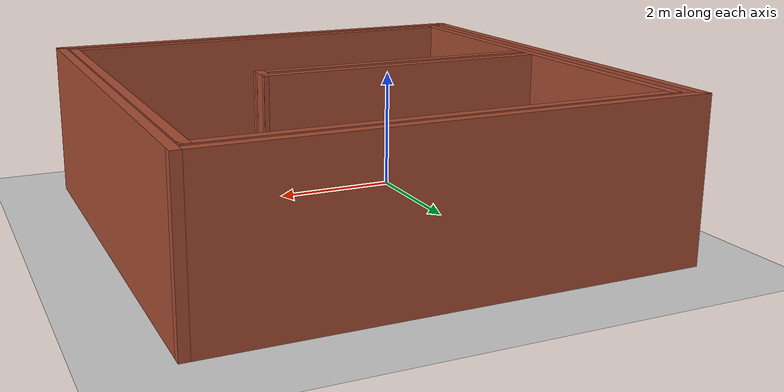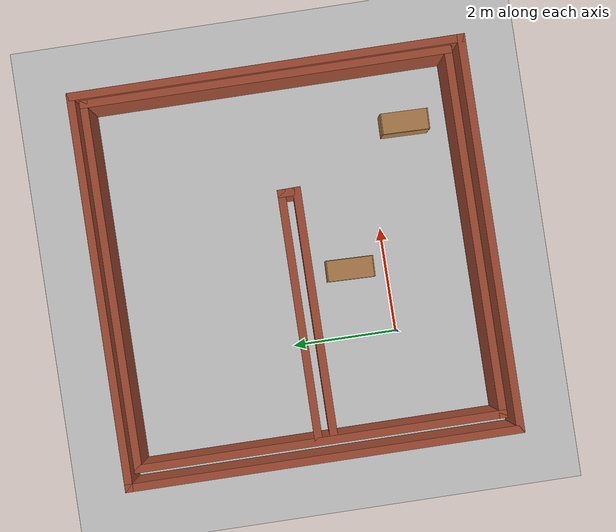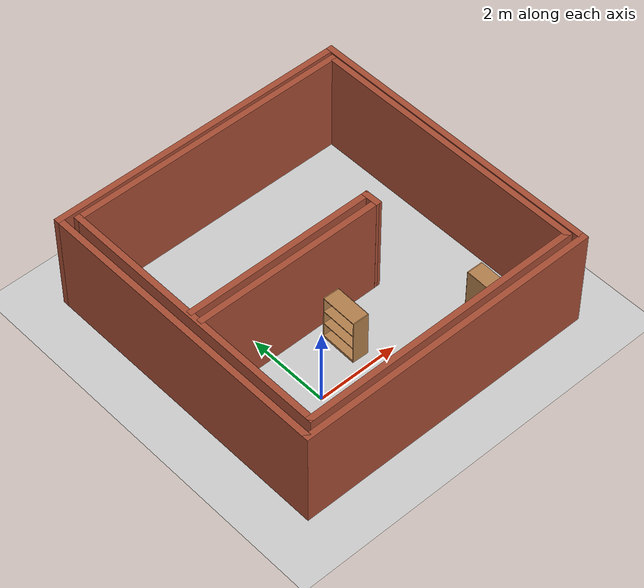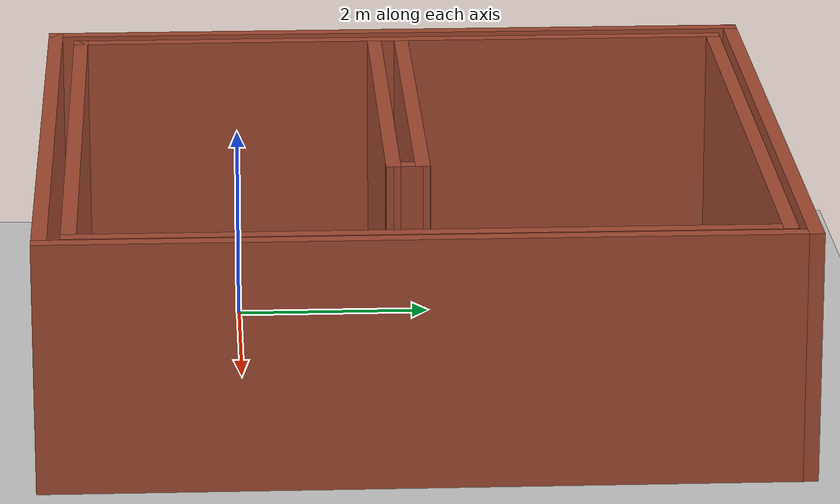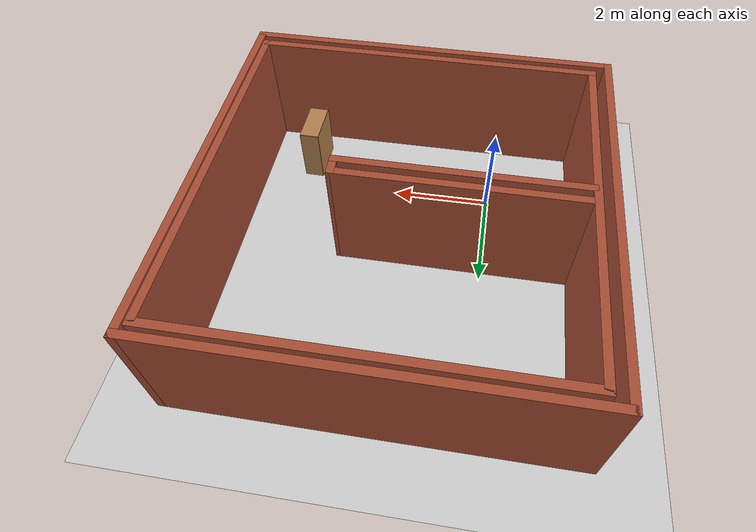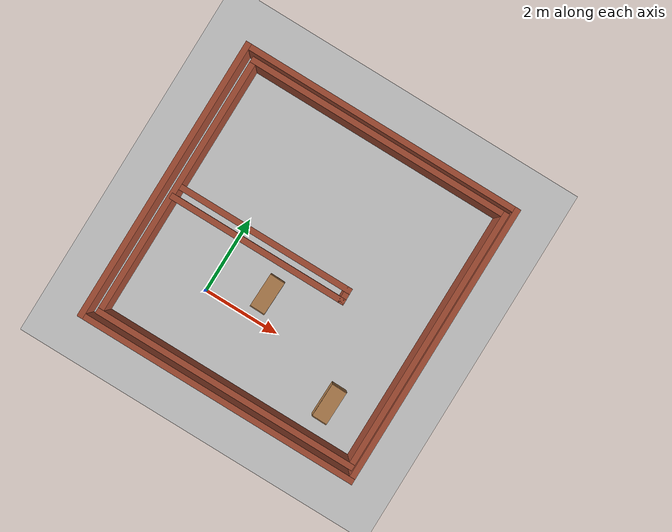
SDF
<sdf version="1.6">
 <world name="default">
  <model name="ground_plane">
   <static>1</static>
   <link name="link">
    <collision name="collision">
     <geometry><plane><normal>0 0 1</normal><size>100 100</size></plane></geometry>
     <surface><friction><ode><mu>100</mu><mu2>50</mu2></ode></friction></surface>
    </collision>
    <visual name="visual">
     <cast_shadows>0</cast_shadows>
     <geometry><plane><normal>0 0 1</normal><size>100 100</size></plane></geometry>
     <material>
      <script><uri>file://media/materials/scripts/gazebo.material</uri><name>Gazebo/Grey</name></script>
     </material>
    </visual>
   </link>
  </model>
  <model name="room_mini">
   <pose>1.55832 1.74079 0 0 -0 0</pose>
   <link name="Wall_0">
    <collision name="Wall_0_Collision">
     <geometry><box><size>7 0.15 2.5</size></box></geometry>
     <pose>0 0 1.25 0 -0 0</pose>
    </collision>
    <visual name="Wall_0_Visual">
     <pose>0 0 1.25 0 -0 0</pose>
     <geometry><box><size>7 0.15 2.5</size></box></geometry>
     <material>
      <script><uri>file://media/materials/scripts/gazebo.material</uri><name>Gazebo/Bricks</name></script>
      <ambient>1 1 1 1</ambient>
     </material>
     <meta><layer>0</layer></meta>
    </visual>
    <pose>0.076061 -3.39774 0 0 -0 0</pose>
   </link>
   <link name="Wall_13">
    <collision name="Wall_13_Collision">
     <geometry><box><size>4.75 0.15 2.5</size></box></geometry>
     <pose>0 0 1.25 0 -0 0</pose>
    </collision>
    <visual name="Wall_13_Visual">
     <pose>0 0 1.25 0 -0 0</pose>
     <geometry><box><size>4.75 0.15 2.5</size></box></geometry>
     <material>
      <script><uri>file://media/materials/scripts/gazebo.material</uri><name>Gazebo/Bricks</name></script>
      <ambient>1 1 1 1</ambient>
     </material>
     <meta><layer>0</layer></meta>
    </visual>
    <pose>-0.985198 -0.23 0 0 -0 0</pose>
   </link>
   <link name="Wall_16">
    <collision name="Wall_16_Collision">
     <geometry><box><size>0.441128 0.15 2.5</size></box></geometry>
     <pose>0 0 1.25 0 -0 0</pose>
    </collision>
    <visual name="Wall_16_Visual">
     <pose>0 0 1.25 0 -0 0</pose>
     <geometry><box><size>0.441128 0.15 2.5</size></box></geometry>
     <material>
      <script><uri>file://media/materials/scripts/gazebo.material</uri><name>Gazebo/Bricks</name></script>
      <ambient>1 1 1 1</ambient>
     </material>
     <meta><layer>0</layer></meta>
    </visual>
    <pose>1.31175 -0.084468 0 0 -0 -1.54982</pose>
   </link>
   <link name="Wall_2">
    <collision name="Wall_2_Collision">
     <geometry><box><size>7 0.15 2.5</size></box></geometry>
     <pose>0 0 1.25 0 -0 0</pose>
    </collision>
    <visual name="Wall_2_Visual">
     <pose>0 0 1.25 0 -0 0</pose>
     <geometry><box><size>7 0.15 2.5</size></box></geometry>
     <material>
      <script><uri>file://media/materials/scripts/gazebo.material</uri><name>Gazebo/Bricks</name></script>
      <ambient>1 1 1 1</ambient>
     </material>
     <meta><layer>0</layer></meta>
    </visual>
    <pose>3.50116 0.027424 0 0 -0 1.57077</pose>
   </link>
   <link name="Wall_20">
    <collision name="Wall_20_Collision">
     <geometry><box><size>7.5 0.15 2.5</size></box></geometry>
     <pose>0 0 1.25 0 -0 0</pose>
    </collision>
    <visual name="Wall_20_Visual">
     <pose>0 0 1.25 0 -0 0</pose>
     <geometry><box><size>7.5 0.15 2.5</size></box></geometry>
     <material>
      <script><uri>file://media/materials/scripts/gazebo.material</uri><name>Gazebo/Bricks</name></script>
      <ambient>1 1 1 1</ambient>
     </material>
     <meta><layer>0</layer></meta>
    </visual>
    <pose>-3.675 0 0 0 -0 -1.5708</pose>
   </link>
   <link name="Wall_23">
    <collision name="Wall_23_Collision">
     <geometry><box><size>7.5 0.15 2.5</size></box></geometry>
     <pose>0 0 1.25 0 -0 0</pose>
    </collision>
    <visual name="Wall_23_Visual">
     <pose>0 0 1.25 0 -0 0</pose>
     <geometry><box><size>7.5 0.15 2.5</size></box></geometry>
     <material>
      <script><uri>file://media/materials/scripts/gazebo.material</uri><name>Gazebo/Bricks</name></script>
      <ambient>1 1 1 1</ambient>
     </material>
     <meta><layer>0</layer></meta>
    </visual>
    <pose>0 -3.675 0 0 -0 0</pose>
   </link>
   <link name="Wall_24">
    <collision name="Wall_24_Collision">
     <geometry><box><size>7.5 0.15 2.5</size></box></geometry>
     <pose>0 0 1.25 0 -0 0</pose>
    </collision>
    <visual name="Wall_24_Visual">
     <pose>0 0 1.25 0 -0 0</pose>
     <geometry><box><size>7.5 0.15 2.5</size></box></geometry>
     <material>
      <script><uri>file://media/materials/scripts/gazebo.material</uri><name>Gazebo/Bricks</name></script>
      <ambient>1 1 1 1</ambient>
     </material>
     <meta><layer>0</layer></meta>
    </visual>
    <pose>3.675 0 0 0 -0 1.5708</pose>
   </link>
   <link name="Wall_25">
    <collision name="Wall_25_Collision">
     <geometry><box><size>7.5 0.15 2.5</size></box></geometry>
     <pose>0 0 1.25 0 -0 0</pose>
    </collision>
    <visual name="Wall_25_Visual">
     <pose>0 0 1.25 0 -0 0</pose>
     <geometry><box><size>7.5 0.15 2.5</size></box></geometry>
     <material>
      <script><uri>file://media/materials/scripts/gazebo.material</uri><name>Gazebo/Bricks</name></script>
      <ambient>1 1 1 1</ambient>
     </material>
     <meta><layer>0</layer></meta>
    </visual>
    <pose>0 3.675 0 0 -0 3.14159</pose>
   </link>
   <link name="Wall_3">
    <collision name="Wall_3_Collision">
     <geometry><box><size>7 0.15 2.5</size></box></geometry>
     <pose>0 0 1.25 0 -0 0</pose>
    </collision>
    <visual name="Wall_3_Visual">
     <pose>0 0 1.25 0 -0 0</pose>
     <geometry><box><size>7 0.15 2.5</size></box></geometry>
     <material>
      <script><uri>file://media/materials/scripts/gazebo.material</uri><name>Gazebo/Bricks</name></script>
      <ambient>1 1 1 1</ambient>
     </material>
     <meta><layer>0</layer></meta>
    </visual>
    <pose>0.076264 3.45259 0 0 -0 3.14159</pose>
   </link>
   <link name="Wall_4">
    <collision name="Wall_4_Collision">
     <geometry><box><size>7 0.15 2.5</size></box></geometry>
     <pose>0 0 1.25 0 -0 0</pose>
    </collision>
    <visual name="Wall_4_Visual">
     <pose>0 0 1.25 0 -0 0</pose>
     <geometry><box><size>7 0.15 2.5</size></box></geometry>
     <material>
      <script><uri>file://media/materials/scripts/gazebo.material</uri><name>Gazebo/Bricks</name></script>
      <ambient>1 1 1 1</ambient>
     </material>
     <meta><layer>0</layer></meta>
    </visual>
    <pose>-3.34884 0.027424 0 0 -0 -1.57083</pose>
   </link>
   <link name="Wall_6">
    <collision name="Wall_6_Collision">
     <geometry><box><size>4.75 0.15 2.5</size></box></geometry>
     <pose>0 0 1.25 0 -0 0</pose>
    </collision>
    <visual name="Wall_6_Visual">
     <pose>0 0 1.25 0 -0 0</pose>
     <geometry><box><size>4.75 0.15 2.5</size></box></geometry>
     <material>
      <script><uri>file://media/materials/scripts/gazebo.material</uri><name>Gazebo/Bricks</name></script>
      <ambient>1 1 1 1</ambient>
     </material>
     <meta><layer>0</layer></meta>
    </visual>
    <pose>-0.991303 0.061064 0 0 -0 0</pose>
   </link>
   <static>1</static>
  </model>
  <model name="bookshelf">
   <static>1</static>
   <link name="link">
    <inertial><mass>1</mass></inertial>
    <collision name="back">
     <pose>0 0.005 0.6 0 -0 0</pose>
     <geometry><box><size>0.9 0.01 1.2</size></box></geometry>
    </collision>
    <visual name="visual1">
     <pose>0 0.005 0.6 0 -0 0</pose>
     <geometry><box><size>0.9 0.01 1.2</size></box></geometry>
     <material>
      <script><uri>file://media/materials/scripts/gazebo.material</uri><name>Gazebo/Wood</name></script>
     </material>
    </visual>
    <collision name="left_side">
     <pose>0.45 -0.195 0.6 0 -0 0</pose>
     <geometry><box><size>0.02 0.4 1.2</size></box></geometry>
    </collision>
    <visual name="visual2">
     <pose>0.45 -0.195 0.6 0 -0 0</pose>
     <geometry><box><size>0.02 0.4 1.2</size></box></geometry>
     <material>
      <script><uri>file://media/materials/scripts/gazebo.material</uri><name>Gazebo/Wood</name></script>
     </material>
    </visual>
    <collision name="right_side">
     <pose>-0.45 -0.195 0.6 0 -0 0</pose>
     <geometry><box><size>0.02 0.4 1.2</size></box></geometry>
    </collision>
    <visual name="visual3">
     <pose>-0.45 -0.195 0.6 0 -0 0</pose>
     <geometry><box><size>0.02 0.4 1.2</size></box></geometry>
     <material>
      <script><uri>file://media/materials/scripts/gazebo.material</uri><name>Gazebo/Wood</name></script>
     </material>
    </visual>
    <collision name="bottom">
     <pose>0 -0.195 0.03 0 -0 0</pose>
     <geometry><box><size>0.88 0.4 0.06</size></box></geometry>
    </collision>
    <visual name="visual4">
     <pose>0 -0.195 0.03 0 -0 0</pose>
     <geometry><box><size>0.88 0.4 0.06</size></box></geometry>
     <material>
      <script><uri>file://media/materials/scripts/gazebo.material</uri><name>Gazebo/Wood</name></script>
     </material>
    </visual>
    <collision name="top">
     <pose>0 -0.195 1.19 0 -0 0</pose>
     <geometry><box><size>0.88 0.4 0.02</size></box></geometry>
    </collision>
    <visual name="visual5">
     <pose>0 -0.195 1.19 0 -0 0</pose>
     <geometry><box><size>0.88 0.4 0.02</size></box></geometry>
     <material>
      <script><uri>file://media/materials/scripts/gazebo.material</uri><name>Gazebo/Wood</name></script>
     </material>
    </visual>
    <collision name="low_shelf">
     <pose>0 -0.195 0.43 0 -0 0</pose>
     <geometry><box><size>0.88 0.4 0.02</size></box></geometry>
    </collision>
    <visual name="visual6">
     <pose>0 -0.195 0.43 0 -0 0</pose>
     <geometry><box><size>0.88 0.4 0.02</size></box></geometry>
     <material>
      <script><uri>file://media/materials/scripts/gazebo.material</uri><name>Gazebo/Wood</name></script>
     </material>
    </visual>
    <collision name="high_shelf">
     <pose>0 -0.195 0.8 0 -0 0</pose>
     <geometry><box><size>0.88 0.4 0.02</size></box></geometry>
    </collision>
    <visual name="visual7">
     <pose>0 -0.195 0.8 0 -0 0</pose>
     <geometry><box><size>0.88 0.4 0.02</size></box></geometry>
     <material>
      <script><uri>file://media/materials/scripts/gazebo.material</uri><name>Gazebo/Wood</name></script>
     </material>
    </visual>
   </link>
   <pose>1.50579 0.711158 0 0 0 -1.59655</pose>
  </model>
  <model name="bookshelf_0">
   <static>1</static>
   <link name="link">
    <inertial><mass>1</mass></inertial>
    <collision name="back">
     <pose>0 0.005 0.6 0 -0 0</pose>
     <geometry><box><size>0.9 0.01 1.2</size></box></geometry>
    </collision>
    <visual name="visual1">
     <pose>0 0.005 0.6 0 -0 0</pose>
     <geometry><box><size>0.9 0.01 1.2</size></box></geometry>
     <material>
      <script><uri>file://media/materials/scripts/gazebo.material</uri><name>Gazebo/Wood</name></script>
     </material>
    </visual>
    <collision name="left_side">
     <pose>0.45 -0.195 0.6 0 -0 0</pose>
     <geometry><box><size>0.02 0.4 1.2</size></box></geometry>
    </collision>
    <visual name="visual2">
     <pose>0.45 -0.195 0.6 0 -0 0</pose>
     <geometry><box><size>0.02 0.4 1.2</size></box></geometry>
     <material>
      <script><uri>file://media/materials/scripts/gazebo.material</uri><name>Gazebo/Wood</name></script>
     </material>
    </visual>
    <collision name="right_side">
     <pose>-0.45 -0.195 0.6 0 -0 0</pose>
     <geometry><box><size>0.02 0.4 1.2</size></box></geometry>
    </collision>
    <visual name="visual3">
     <pose>-0.45 -0.195 0.6 0 -0 0</pose>
     <geometry><box><size>0.02 0.4 1.2</size></box></geometry>
     <material>
      <script><uri>file://media/materials/scripts/gazebo.material</uri><name>Gazebo/Wood</name></script>
     </material>
    </visual>
    <collision name="bottom">
     <pose>0 -0.195 0.03 0 -0 0</pose>
     <geometry><box><size>0.88 0.4 0.06</size></box></geometry>
    </collision>
    <visual name="visual4">
     <pose>0 -0.195 0.03 0 -0 0</pose>
     <geometry><box><size>0.88 0.4 0.06</size></box></geometry>
     <material>
      <script><uri>file://media/materials/scripts/gazebo.material</uri><name>Gazebo/Wood</name></script>
     </material>
    </visual>
    <collision name="top">
     <pose>0 -0.195 1.19 0 -0 0</pose>
     <geometry><box><size>0.88 0.4 0.02</size></box></geometry>
    </collision>
    <visual name="visual5">
     <pose>0 -0.195 1.19 0 -0 0</pose>
     <geometry><box><size>0.88 0.4 0.02</size></box></geometry>
     <material>
      <script><uri>file://media/materials/scripts/gazebo.material</uri><name>Gazebo/Wood</name></script>
     </material>
    </visual>
    <collision name="low_shelf">
     <pose>0 -0.195 0.43 0 -0 0</pose>
     <geometry><box><size>0.88 0.4 0.02</size></box></geometry>
    </collision>
    <visual name="visual6">
     <pose>0 -0.195 0.43 0 -0 0</pose>
     <geometry><box><size>0.88 0.4 0.02</size></box></geometry>
     <material>
      <script><uri>file://media/materials/scripts/gazebo.material</uri><name>Gazebo/Wood</name></script>
     </material>
    </visual>
    <collision name="high_shelf">
     <pose>0 -0.195 0.8 0 -0 0</pose>
     <geometry><box><size>0.88 0.4 0.02</size></box></geometry>
    </collision>
    <visual name="visual7">
     <pose>0 -0.195 0.8 0 -0 0</pose>
     <geometry><box><size>0.88 0.4 0.02</size></box></geometry>
     <material>
      <script><uri>file://media/materials/scripts/gazebo.material</uri><name>Gazebo/Wood</name></script>
     </material>
    </visual>
   </link>
   <pose>3.74014 -0.731154 0 0 -0 1.55204</pose>
  </model>
 </world>
</sdf>
